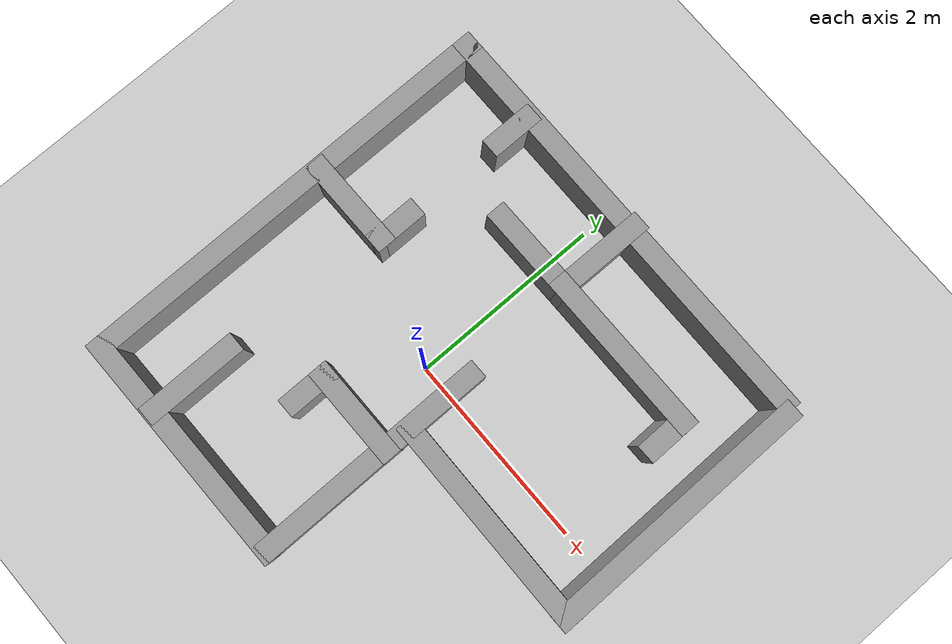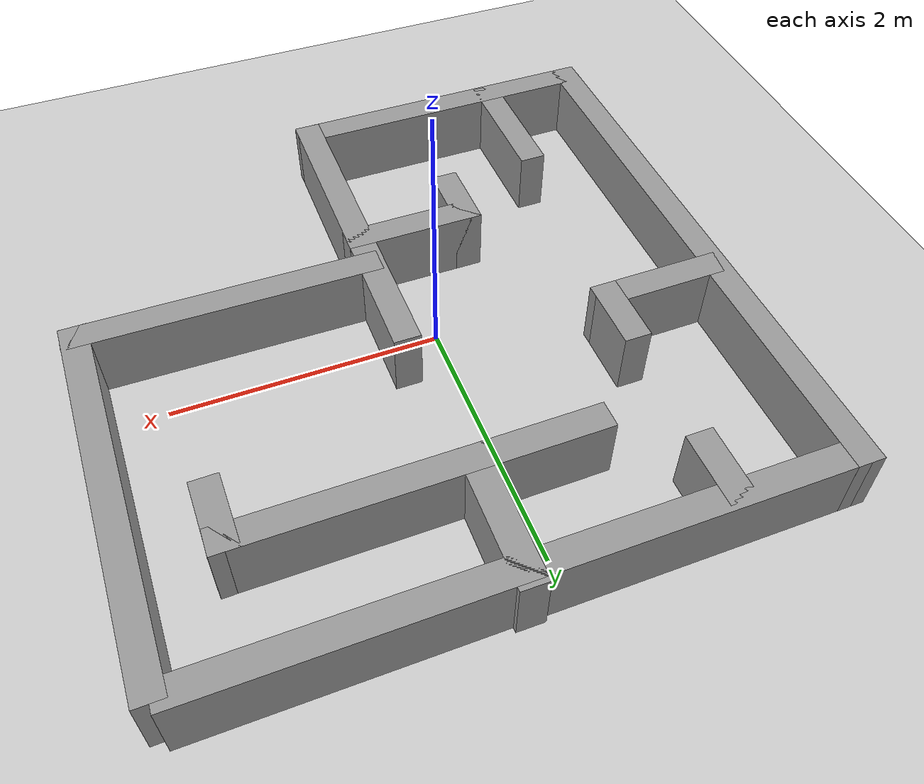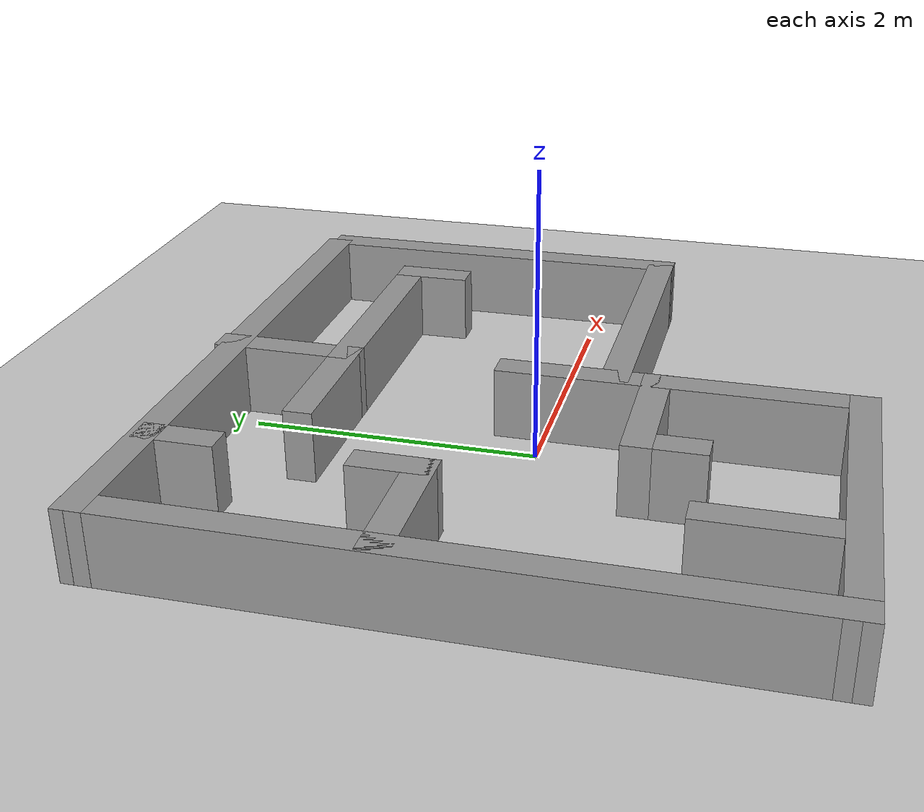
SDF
<sdf version="1.6">
 <world name="default">
  <light name="sun" type="directional">
   <pose>0 0 10 0 -0 0</pose>
   <diffuse>0.8 0.8 0.8 1</diffuse>
   <specular>0.1 0.1 0.1 1</specular>
   <attenuation>
    <range>1000</range>
    <constant>0.9</constant>
    <linear>0.01</linear>
    <quadratic>0.001</quadratic>
   </attenuation>
   <direction>-0.5 0.5 -1</direction>
  </light>
  <model name="ground_plane">
   <static>1</static>
   <link name="link">
    <collision name="collision">
     <geometry><plane><normal>0 0 1</normal><size>100 100</size></plane></geometry>
     <surface><friction><ode><mu>100</mu><mu2>50</mu2></ode></friction></surface>
    </collision>
    <visual name="visual">
     <cast_shadows>0</cast_shadows>
     <geometry><plane><normal>0 0 1</normal><size>100 100</size></plane></geometry>
     <material>
      <script><uri>file://media/materials/scripts/gazebo.material</uri><name>Gazebo/Grey</name></script>
     </material>
    </visual>
   </link>
  </model>
  <gravity>0 0 -9.8</gravity>
  <magnetic_field>6e-06 2.3e-05 -4.2e-05</magnetic_field>
  <atmosphere type="adiabatic"/>
  <physics name="default_physics" default="0" type="ode">
   <max_step_size>0.001</max_step_size>
   <real_time_factor>1</real_time_factor>
   <real_time_update_rate>1000</real_time_update_rate>
  </physics>
  <scene><ambient>0.4 0.4 0.4 1</ambient><background>0.7 0.7 0.7 1</background><shadows>1</shadows></scene>
  <spherical_coordinates>
   <surface_model>EARTH_WGS84</surface_model>
   <latitude_deg>0</latitude_deg>
   <longitude_deg>0</longitude_deg>
   <elevation>0</elevation>
   <heading_deg>0</heading_deg>
  </spherical_coordinates>
  <model name="maze">
   <pose>0.225442 0.081689 0 0 -0 0</pose>
   <link name="Wall_0">
    <collision name="Wall_0_Collision">
     <geometry><box><size>4.545 0.2 0.5</size></box></geometry>
     <pose>0 0 0.25 0 -0 0</pose>
    </collision>
    <visual name="Wall_0_Visual">
     <pose>0 0 0.25 0 -0 0</pose>
     <geometry><box><size>4.545 0.2 0.5</size></box></geometry>
     <material>
      <script><uri>file://media/materials/scripts/gazebo.material</uri><name>Gazebo/Grey</name></script>
      <ambient>1 1 1 1</ambient>
     </material>
    </visual>
    <pose>-2.24144 -0.015189 0 0 0 -1.5708</pose>
   </link>
   <link name="Wall_1">
    <collision name="Wall_1_Collision">
     <geometry><box><size>2.55001 0.2 0.5</size></box></geometry>
     <pose>0 0 0.25 0 -0 0</pose>
    </collision>
    <visual name="Wall_1_Visual">
     <pose>0 0 0.25 0 -0 0</pose>
     <geometry><box><size>2.55001 0.2 0.5</size></box></geometry>
     <material>
      <script><uri>file://media/materials/scripts/gazebo.material</uri><name>Gazebo/Grey</name></script>
      <ambient>1 1 1 1</ambient>
     </material>
    </visual>
    <pose>-1.06644 -2.18519 0 0 -0 0.002128</pose>
   </link>
   <link name="Wall_11">
    <collision name="Wall_11_Collision">
     <geometry><box><size>4.55004 0.2 0.5</size></box></geometry>
     <pose>0 0 0.25 0 -0 0</pose>
    </collision>
    <visual name="Wall_11_Visual">
     <pose>0 0 0.25 0 -0 0</pose>
     <geometry><box><size>4.55004 0.2 0.5</size></box></geometry>
     <material>
      <script><uri>file://media/materials/scripts/gazebo.material</uri><name>Gazebo/Grey</name></script>
      <ambient>1 1 1 1</ambient>
     </material>
    </visual>
    <pose>-0.066442 2.15231 0 0 0 -0.002299</pose>
   </link>
   <link name="Wall_14">
    <collision name="Wall_14_Collision">
     <geometry><box><size>1.04502 0.2 0.5</size></box></geometry>
     <pose>0 0 0.25 0 -0 0</pose>
    </collision>
    <visual name="Wall_14_Visual">
     <pose>0 0 0.25 0 -0 0</pose>
     <geometry><box><size>1.04502 0.2 0.5</size></box></geometry>
     <material>
      <script><uri>file://media/materials/scripts/gazebo.material</uri><name>Gazebo/Grey</name></script>
      <ambient>1 1 1 1</ambient>
     </material>
    </visual>
    <pose>0.048058 1.76481 0 0 0 -1.57671</pose>
   </link>
   <link name="Wall_15">
    <collision name="Wall_15_Collision">
     <geometry><box><size>1.80004 0.2 0.5</size></box></geometry>
     <pose>0 0 0.25 0 -0 0</pose>
    </collision>
    <visual name="Wall_15_Visual">
     <pose>0 0 0.25 0 -0 0</pose>
     <geometry><box><size>1.80004 0.2 0.5</size></box></geometry>
     <material>
      <script><uri>file://media/materials/scripts/gazebo.material</uri><name>Gazebo/Grey</name></script>
      <ambient>1 1 1 1</ambient>
     </material>
    </visual>
    <pose>0.845558 1.34231 0 0 -0 0</pose>
   </link>
   <link name="Wall_16">
    <collision name="Wall_16_Collision">
     <geometry><box><size>0.555176 0.2 0.5</size></box></geometry>
     <pose>0 0 0.25 0 -0 0</pose>
    </collision>
    <visual name="Wall_16_Visual">
     <pose>0 0 0.25 0 -0 0</pose>
     <geometry><box><size>0.555176 0.2 0.5</size></box></geometry>
     <material>
      <script><uri>file://media/materials/scripts/gazebo.material</uri><name>Gazebo/Grey</name></script>
      <ambient>1 1 1 1</ambient>
     </material>
    </visual>
    <pose>1.64806 1.16481 0 0 0 -1.55671</pose>
   </link>
   <link name="Wall_18">
    <collision name="Wall_18_Collision">
     <geometry><box><size>1.045 0.2 0.5</size></box></geometry>
     <pose>0 0 0.25 0 -0 0</pose>
    </collision>
    <visual name="Wall_18_Visual">
     <pose>0 0 0.25 0 -0 0</pose>
     <geometry><box><size>1.045 0.2 0.5</size></box></geometry>
     <material>
      <script><uri>file://media/materials/scripts/gazebo.material</uri><name>Gazebo/Grey</name></script>
      <ambient>1 1 1 1</ambient>
     </material>
    </visual>
    <pose>-0.376942 1.33981 0 0 0 -3.13568</pose>
   </link>
   <link name="Wall_2">
    <collision name="Wall_2_Collision">
     <geometry><box><size>2.54997 0.2 0.5</size></box></geometry>
     <pose>0 0 0.25 0 -0 0</pose>
    </collision>
    <visual name="Wall_2_Visual">
     <pose>0 0 0.25 0 -0 0</pose>
     <geometry><box><size>2.54997 0.2 0.5</size></box></geometry>
     <material>
      <script><uri>file://media/materials/scripts/gazebo.material</uri><name>Gazebo/Grey</name></script>
      <ambient>1 1 1 1</ambient>
     </material>
    </visual>
    <pose>0.108558 -1.00769 0 0 -0 1.5708</pose>
   </link>
   <link name="Wall_20">
    <collision name="Wall_20_Collision">
     <geometry><box><size>1.04994 0.2 0.5</size></box></geometry>
     <pose>0 0 0.25 0 -0 0</pose>
    </collision>
    <visual name="Wall_20_Visual">
     <pose>0 0 0.25 0 -0 0</pose>
     <geometry><box><size>1.04994 0.2 0.5</size></box></geometry>
     <material>
      <script><uri>file://media/materials/scripts/gazebo.material</uri><name>Gazebo/Grey</name></script>
      <ambient>1 1 1 1</ambient>
     </material>
    </visual>
    <pose>-1.80144 0.364811 0 0 -0 0.005882</pose>
   </link>
   <link name="Wall_21">
    <collision name="Wall_21_Collision">
     <geometry><box><size>0.55 0.2 0.5</size></box></geometry>
     <pose>0 0 0.25 0 -0 0</pose>
    </collision>
    <visual name="Wall_21_Visual">
     <pose>0 0 0.25 0 -0 0</pose>
     <geometry><box><size>0.55 0.2 0.5</size></box></geometry>
     <material>
      <script><uri>file://media/materials/scripts/gazebo.material</uri><name>Gazebo/Grey</name></script>
      <ambient>1 1 1 1</ambient>
     </material>
    </visual>
    <pose>-1.37644 0.542311 0 0 -0 1.5708</pose>
   </link>
   <link name="Wall_23">
    <collision name="Wall_23_Collision">
     <geometry><box><size>0.549745 0.2 0.5</size></box></geometry>
     <pose>0 0 0.25 0 -0 0</pose>
    </collision>
    <visual name="Wall_23_Visual">
     <pose>0 0 0.25 0 -0 0</pose>
     <geometry><box><size>0.549745 0.2 0.5</size></box></geometry>
     <material>
      <script><uri>file://media/materials/scripts/gazebo.material</uri><name>Gazebo/Grey</name></script>
      <ambient>1 1 1 1</ambient>
     </material>
    </visual>
    <pose>-1.35644 1.94231 0 0 0 -1.5708</pose>
   </link>
   <link name="Wall_25">
    <collision name="Wall_25_Collision">
     <geometry><box><size>2.85067 0.2 0.5</size></box></geometry>
     <pose>0 0 0.25 0 -0 0</pose>
    </collision>
    <visual name="Wall_25_Visual">
     <pose>0 0 0.25 0 -0 0</pose>
     <geometry><box><size>2.85067 0.2 0.5</size></box></geometry>
     <material>
      <script><uri>file://media/materials/scripts/gazebo.material</uri><name>Gazebo/Grey</name></script>
      <ambient>1 1 1 1</ambient>
     </material>
    </visual>
    <pose>2.22556 0.758311 0 0 -0 1.58212</pose>
   </link>
   <link name="Wall_4">
    <collision name="Wall_4_Collision">
     <geometry><box><size>1.04962 0.2 0.5</size></box></geometry>
     <pose>0 0 0.25 0 -0 0</pose>
    </collision>
    <visual name="Wall_4_Visual">
     <pose>0 0 0.25 0 -0 0</pose>
     <geometry><box><size>1.04962 0.2 0.5</size></box></geometry>
     <material>
      <script><uri>file://media/materials/scripts/gazebo.material</uri><name>Gazebo/Grey</name></script>
      <ambient>1 1 1 1</ambient>
     </material>
    </visual>
    <pose>-1.49044 -1.74769 0 0 -0 1.5708</pose>
   </link>
   <link name="Wall_6">
    <collision name="Wall_6_Collision">
     <geometry><box><size>1.05032 0.2 0.5</size></box></geometry>
     <pose>0 0 0.25 0 -0 0</pose>
    </collision>
    <visual name="Wall_6_Visual">
     <pose>0 0 0.25 0 -0 0</pose>
     <geometry><box><size>1.05032 0.2 0.5</size></box></geometry>
     <material>
      <script><uri>file://media/materials/scripts/gazebo.material</uri><name>Gazebo/Grey</name></script>
      <ambient>1 1 1 1</ambient>
     </material>
    </visual>
    <pose>-0.314442 -0.830689 0 0 -0 3.14159</pose>
   </link>
   <link name="Wall_7">
    <collision name="Wall_7_Collision">
     <geometry><box><size>0.550004 0.2 0.5</size></box></geometry>
     <pose>0 0 0.25 0 -0 0</pose>
    </collision>
    <visual name="Wall_7_Visual">
     <pose>0 0 0.25 0 -0 0</pose>
     <geometry><box><size>0.550004 0.2 0.5</size></box></geometry>
     <material>
      <script><uri>file://media/materials/scripts/gazebo.material</uri><name>Gazebo/Grey</name></script>
      <ambient>1 1 1 1</ambient>
     </material>
    </visual>
    <pose>-0.739442 -1.00569 0 0 0 -1.5708</pose>
   </link>
   <link name="Wall_9">
    <collision name="Wall_9_Collision">
     <geometry><box><size>2.30009 0.2 0.5</size></box></geometry>
     <pose>0 0 0.25 0 -0 0</pose>
    </collision>
    <visual name="Wall_9_Visual">
     <pose>0 0 0.25 0 -0 0</pose>
     <geometry><box><size>2.30009 0.2 0.5</size></box></geometry>
     <material>
      <script><uri>file://media/materials/scripts/gazebo.material</uri><name>Gazebo/Grey</name></script>
      <ambient>1 1 1 1</ambient>
     </material>
    </visual>
    <pose>1.19056 -0.557189 0 0 0 -0.009047</pose>
   </link>
   <static>1</static>
  </model>
 </world>
</sdf>
